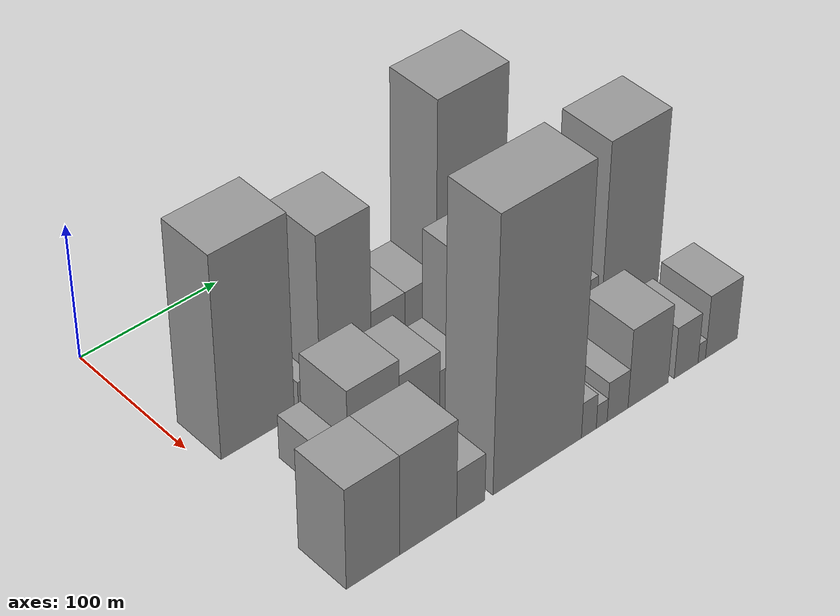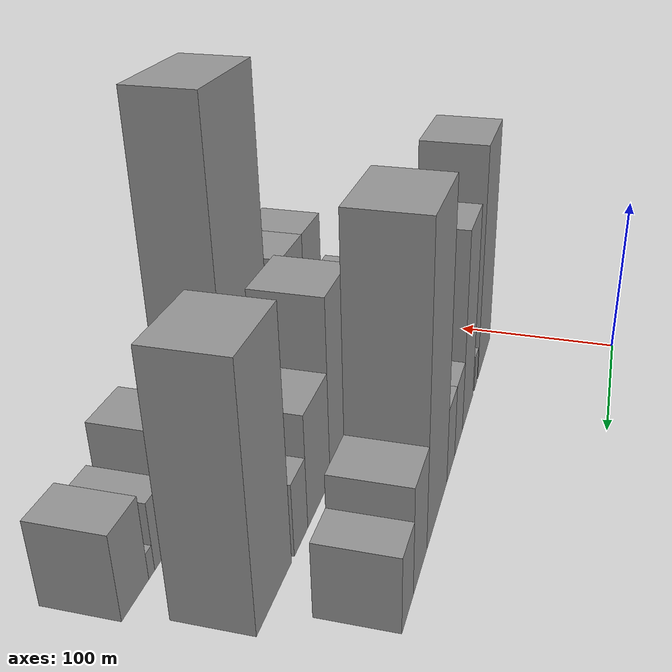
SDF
<sdf version="1.6">
 <world name="default">
  <model name="building_17">
   <static>1</static>
   <pose>100.0000 36.2147 0 0.000000 0.000000 0.000000</pose>
   <link name="link">
    <pose>0 0 75.00 0 0 0</pose>
    <collision name="collision"><geometry><box><size>40.0000 52.8672 150.0000</size></box></geometry></collision>
    <visual name="visual">
     <cast_shadows>0</cast_shadows>
     <geometry><box><size>40.0000 52.8672 150.0000</size></box></geometry>
     <material>
      <script>
       <uri>model://grey_wall/materials/scripts</uri>
       <uri>model://grey_wall/materials/textures</uri>
       <name>vrc/grey_wall</name>
      </script>
     </material>
    </visual>
   </link>
  </model>
  <model name="building_18">
   <static>1</static>
   <pose>100.0000 71.1362 0 0.000000 0.000000 0.000000</pose>
   <link name="link">
    <pose>0 0 12.00 0 0 0</pose>
    <collision name="collision"><geometry><box><size>40.0000 10.9758 24.0000</size></box></geometry></collision>
    <visual name="visual">
     <cast_shadows>0</cast_shadows>
     <geometry><box><size>40.0000 10.9758 24.0000</size></box></geometry>
     <material>
      <script>
       <uri>model://grey_wall/materials/scripts</uri>
       <uri>model://grey_wall/materials/textures</uri>
       <name>vrc/grey_wall</name>
      </script>
     </material>
    </visual>
   </link>
  </model>
  <model name="building_19">
   <static>1</static>
   <pose>100.0000 100.8529 0 0.000000 0.000000 0.000000</pose>
   <link name="link">
    <pose>0 0 61.50 0 0 0</pose>
    <collision name="collision"><geometry><box><size>40.0000 38.4576 123.0000</size></box></geometry></collision>
    <visual name="visual">
     <cast_shadows>0</cast_shadows>
     <geometry><box><size>40.0000 38.4576 123.0000</size></box></geometry>
     <material>
      <script>
       <uri>model://grey_wall/materials/scripts</uri>
       <uri>model://grey_wall/materials/textures</uri>
       <name>vrc/grey_wall</name>
      </script>
     </material>
    </visual>
   </link>
  </model>
  <model name="building_20">
   <static>1</static>
   <pose>100.0000 132.8701 0 0.000000 0.000000 0.000000</pose>
   <link name="link">
    <pose>0 0 22.50 0 0 0</pose>
    <collision name="collision"><geometry><box><size>40.0000 25.5769 45.0000</size></box></geometry></collision>
    <visual name="visual">
     <cast_shadows>0</cast_shadows>
     <geometry><box><size>40.0000 25.5769 45.0000</size></box></geometry>
     <material>
      <script>
       <uri>model://grey_wall/materials/scripts</uri>
       <uri>model://grey_wall/materials/textures</uri>
       <name>vrc/grey_wall</name>
      </script>
     </material>
    </visual>
   </link>
  </model>
  <model name="building_21">
   <static>1</static>
   <pose>100.0000 157.6431 0 0.000000 0.000000 0.000000</pose>
   <link name="link">
    <pose>0 0 22.50 0 0 0</pose>
    <collision name="collision"><geometry><box><size>40.0000 23.9690 45.0000</size></box></geometry></collision>
    <visual name="visual">
     <cast_shadows>0</cast_shadows>
     <geometry><box><size>40.0000 23.9690 45.0000</size></box></geometry>
     <material>
      <script>
       <uri>model://grey_wall/materials/scripts</uri>
       <uri>model://grey_wall/materials/textures</uri>
       <name>vrc/grey_wall</name>
      </script>
     </material>
    </visual>
   </link>
  </model>
  <model name="building_22">
   <static>1</static>
   <pose>100.0000 196.2056 0 0.000000 0.000000 0.000000</pose>
   <link name="link">
    <pose>0 0 85.50 0 0 0</pose>
    <collision name="collision"><geometry><box><size>40.0000 53.1561 171.0000</size></box></geometry></collision>
    <visual name="visual">
     <cast_shadows>0</cast_shadows>
     <geometry><box><size>40.0000 53.1561 171.0000</size></box></geometry>
     <material>
      <script>
       <uri>model://grey_wall/materials/scripts</uri>
       <uri>model://grey_wall/materials/textures</uri>
       <name>vrc/grey_wall</name>
      </script>
     </material>
    </visual>
   </link>
  </model>
  <model name="building_23">
   <static>1</static>
   <pose>100.0000 238.1051 0 0.000000 0.000000 0.000000</pose>
   <link name="link">
    <pose>0 0 30.00 0 0 0</pose>
    <collision name="collision"><geometry><box><size>40.0000 30.6430 60.0000</size></box></geometry></collision>
    <visual name="visual">
     <cast_shadows>0</cast_shadows>
     <geometry><box><size>40.0000 30.6430 60.0000</size></box></geometry>
     <material>
      <script>
       <uri>model://grey_wall/materials/scripts</uri>
       <uri>model://grey_wall/materials/textures</uri>
       <name>vrc/grey_wall</name>
      </script>
     </material>
    </visual>
   </link>
  </model>
  <model name="building_24">
   <static>1</static>
   <pose>100.0000 265.1412 0 0.000000 0.000000 0.000000</pose>
   <link name="link">
    <pose>0 0 21.00 0 0 0</pose>
    <collision name="collision"><geometry><box><size>40.0000 23.4290 42.0000</size></box></geometry></collision>
    <visual name="visual">
     <cast_shadows>0</cast_shadows>
     <geometry><box><size>40.0000 23.4290 42.0000</size></box></geometry>
     <material>
      <script>
       <uri>model://grey_wall/materials/scripts</uri>
       <uri>model://grey_wall/materials/textures</uri>
       <name>vrc/grey_wall</name>
      </script>
     </material>
    </visual>
   </link>
  </model>
  <model name="building_56">
   <static>1</static>
   <pose>160.0000 43.5094 0 0.000000 0.000000 0.000000</pose>
   <link name="link">
    <pose>0 0 16.50 0 0 0</pose>
    <collision name="collision"><geometry><box><size>40.0000 16.6226 33.0000</size></box></geometry></collision>
    <visual name="visual">
     <cast_shadows>0</cast_shadows>
     <geometry><box><size>40.0000 16.6226 33.0000</size></box></geometry>
     <material>
      <script>
       <uri>model://grey_wall/materials/scripts</uri>
       <uri>model://grey_wall/materials/textures</uri>
       <name>vrc/grey_wall</name>
      </script>
     </material>
    </visual>
   </link>
  </model>
  <model name="building_57">
   <static>1</static>
   <pose>160.0000 70.5912 0 0.000000 0.000000 0.000000</pose>
   <link name="link">
    <pose>0 0 34.50 0 0 0</pose>
    <collision name="collision"><geometry><box><size>40.0000 37.5410 69.0000</size></box></geometry></collision>
    <visual name="visual">
     <cast_shadows>0</cast_shadows>
     <geometry><box><size>40.0000 37.5410 69.0000</size></box></geometry>
     <material>
      <script>
       <uri>model://grey_wall/materials/scripts</uri>
       <uri>model://grey_wall/materials/textures</uri>
       <name>vrc/grey_wall</name>
      </script>
     </material>
    </visual>
   </link>
  </model>
  <model name="building_58">
   <static>1</static>
   <pose>160.0000 104.3225 0 0.000000 0.000000 0.000000</pose>
   <link name="link">
    <pose>0 0 28.50 0 0 0</pose>
    <collision name="collision"><geometry><box><size>40.0000 29.9216 57.0000</size></box></geometry></collision>
    <visual name="visual">
     <cast_shadows>0</cast_shadows>
     <geometry><box><size>40.0000 29.9216 57.0000</size></box></geometry>
     <material>
      <script>
       <uri>model://grey_wall/materials/scripts</uri>
       <uri>model://grey_wall/materials/textures</uri>
       <name>vrc/grey_wall</name>
      </script>
     </material>
    </visual>
   </link>
  </model>
  <model name="building_59">
   <static>1</static>
   <pose>160.0000 130.3247 0 0.000000 0.000000 0.000000</pose>
   <link name="link">
    <pose>0 0 21.00 0 0 0</pose>
    <collision name="collision"><geometry><box><size>40.0000 22.0829 42.0000</size></box></geometry></collision>
    <visual name="visual">
     <cast_shadows>0</cast_shadows>
     <geometry><box><size>40.0000 22.0829 42.0000</size></box></geometry>
     <material>
      <script>
       <uri>model://grey_wall/materials/scripts</uri>
       <uri>model://grey_wall/materials/textures</uri>
       <name>vrc/grey_wall</name>
      </script>
     </material>
    </visual>
   </link>
  </model>
  <model name="building_60">
   <static>1</static>
   <pose>160.0000 161.8970 0 0.000000 0.000000 0.000000</pose>
   <link name="link">
    <pose>0 0 54.00 0 0 0</pose>
    <collision name="collision"><geometry><box><size>40.0000 41.0616 108.0000</size></box></geometry></collision>
    <visual name="visual">
     <cast_shadows>0</cast_shadows>
     <geometry><box><size>40.0000 41.0616 108.0000</size></box></geometry>
     <material>
      <script>
       <uri>model://grey_wall/materials/scripts</uri>
       <uri>model://grey_wall/materials/textures</uri>
       <name>vrc/grey_wall</name>
      </script>
     </material>
    </visual>
   </link>
  </model>
  <model name="building_61">
   <static>1</static>
   <pose>160.0000 201.6902 0 0.000000 0.000000 0.000000</pose>
   <link name="link">
    <pose>0 0 33.00 0 0 0</pose>
    <collision name="collision"><geometry><box><size>40.0000 38.5248 66.0000</size></box></geometry></collision>
    <visual name="visual">
     <cast_shadows>0</cast_shadows>
     <geometry><box><size>40.0000 38.5248 66.0000</size></box></geometry>
     <material>
      <script>
       <uri>model://grey_wall/materials/scripts</uri>
       <uri>model://grey_wall/materials/textures</uri>
       <name>vrc/grey_wall</name>
      </script>
     </material>
    </visual>
   </link>
  </model>
  <model name="building_62">
   <static>1</static>
   <pose>160.0000 231.4833 0 0.000000 0.000000 0.000000</pose>
   <link name="link">
    <pose>0 0 21.00 0 0 0</pose>
    <collision name="collision"><geometry><box><size>40.0000 21.0615 42.0000</size></box></geometry></collision>
    <visual name="visual">
     <cast_shadows>0</cast_shadows>
     <geometry><box><size>40.0000 21.0615 42.0000</size></box></geometry>
     <material>
      <script>
       <uri>model://grey_wall/materials/scripts</uri>
       <uri>model://grey_wall/materials/textures</uri>
       <name>vrc/grey_wall</name>
      </script>
     </material>
    </visual>
   </link>
  </model>
  <model name="building_63">
   <static>1</static>
   <pose>160.0000 269.6209 0 0.000000 0.000000 0.000000</pose>
   <link name="link">
    <pose>0 0 69.00 0 0 0</pose>
    <collision name="collision"><geometry><box><size>40.0000 47.2138 138.0000</size></box></geometry></collision>
    <visual name="visual">
     <cast_shadows>0</cast_shadows>
     <geometry><box><size>40.0000 47.2138 138.0000</size></box></geometry>
     <material>
      <script>
       <uri>model://grey_wall/materials/scripts</uri>
       <uri>model://grey_wall/materials/textures</uri>
       <name>vrc/grey_wall</name>
      </script>
     </material>
    </visual>
   </link>
  </model>
  <model name="building_90">
   <static>1</static>
   <pose>220.0000 18.6313 0 0.000000 0.000000 0.000000</pose>
   <link name="link">
    <pose>0 0 37.50 0 0 0</pose>
    <collision name="collision"><geometry><box><size>40.0000 37.6420 75.0000</size></box></geometry></collision>
    <visual name="visual">
     <cast_shadows>0</cast_shadows>
     <geometry><box><size>40.0000 37.6420 75.0000</size></box></geometry>
     <material>
      <script>
       <uri>model://grey_wall/materials/scripts</uri>
       <uri>model://grey_wall/materials/textures</uri>
       <name>vrc/grey_wall</name>
      </script>
     </material>
    </visual>
   </link>
  </model>
  <model name="building_91">
   <static>1</static>
   <pose>220.0000 57.8732 0 0.000000 0.000000 0.000000</pose>
   <link name="link">
    <pose>0 0 37.50 0 0 0</pose>
    <collision name="collision"><geometry><box><size>40.0000 40.8420 75.0000</size></box></geometry></collision>
    <visual name="visual">
     <cast_shadows>0</cast_shadows>
     <geometry><box><size>40.0000 40.8420 75.0000</size></box></geometry>
     <material>
      <script>
       <uri>model://grey_wall/materials/scripts</uri>
       <uri>model://grey_wall/materials/textures</uri>
       <name>vrc/grey_wall</name>
      </script>
     </material>
    </visual>
   </link>
  </model>
  <model name="building_92">
   <static>1</static>
   <pose>220.0000 88.7363 0 0.000000 0.000000 0.000000</pose>
   <link name="link">
    <pose>0 0 18.00 0 0 0</pose>
    <collision name="collision"><geometry><box><size>40.0000 20.8841 36.0000</size></box></geometry></collision>
    <visual name="visual">
     <cast_shadows>0</cast_shadows>
     <geometry><box><size>40.0000 20.8841 36.0000</size></box></geometry>
     <material>
      <script>
       <uri>model://grey_wall/materials/scripts</uri>
       <uri>model://grey_wall/materials/textures</uri>
       <name>vrc/grey_wall</name>
      </script>
     </material>
    </visual>
   </link>
  </model>
  <model name="building_93">
   <static>1</static>
   <pose>220.0000 138.8895 0 0.000000 0.000000 0.000000</pose>
   <link name="link">
    <pose>0 0 100.50 0 0 0</pose>
    <collision name="collision"><geometry><box><size>40.0000 67.4222 201.0000</size></box></geometry></collision>
    <visual name="visual">
     <cast_shadows>0</cast_shadows>
     <geometry><box><size>40.0000 67.4222 201.0000</size></box></geometry>
     <material>
      <script>
       <uri>model://grey_wall/materials/scripts</uri>
       <uri>model://grey_wall/materials/textures</uri>
       <name>vrc/grey_wall</name>
      </script>
     </material>
    </visual>
   </link>
  </model>
  <model name="building_94">
   <static>1</static>
   <pose>220.0000 178.4116 0 0.000000 0.000000 0.000000</pose>
   <link name="link">
    <pose>0 0 13.50 0 0 0</pose>
    <collision name="collision"><geometry><box><size>40.0000 11.6221 27.0000</size></box></geometry></collision>
    <visual name="visual">
     <cast_shadows>0</cast_shadows>
     <geometry><box><size>40.0000 11.6221 27.0000</size></box></geometry>
     <material>
      <script>
       <uri>model://grey_wall/materials/scripts</uri>
       <uri>model://grey_wall/materials/textures</uri>
       <name>vrc/grey_wall</name>
      </script>
     </material>
    </visual>
   </link>
  </model>
  <model name="building_95">
   <static>1</static>
   <pose>220.0000 188.5057 0 0.000000 0.000000 0.000000</pose>
   <link name="link">
    <pose>0 0 9.00 0 0 0</pose>
    <collision name="collision"><geometry><box><size>40.0000 8.5661 18.0000</size></box></geometry></collision>
    <visual name="visual">
     <cast_shadows>0</cast_shadows>
     <geometry><box><size>40.0000 8.5661 18.0000</size></box></geometry>
     <material>
      <script>
       <uri>model://grey_wall/materials/scripts</uri>
       <uri>model://grey_wall/materials/textures</uri>
       <name>vrc/grey_wall</name>
      </script>
     </material>
    </visual>
   </link>
  </model>
  <model name="building_96">
   <static>1</static>
   <pose>220.0000 201.0947 0 0.000000 0.000000 0.000000</pose>
   <link name="link">
    <pose>0 0 15.00 0 0 0</pose>
    <collision name="collision"><geometry><box><size>40.0000 16.6120 30.0000</size></box></geometry></collision>
    <visual name="visual">
     <cast_shadows>0</cast_shadows>
     <geometry><box><size>40.0000 16.6120 30.0000</size></box></geometry>
     <material>
      <script>
       <uri>model://grey_wall/materials/scripts</uri>
       <uri>model://grey_wall/materials/textures</uri>
       <name>vrc/grey_wall</name>
      </script>
     </material>
    </visual>
   </link>
  </model>
  <model name="building_97">
   <static>1</static>
   <pose>220.0000 225.5887 0 0.000000 0.000000 0.000000</pose>
   <link name="link">
    <pose>0 0 30.00 0 0 0</pose>
    <collision name="collision"><geometry><box><size>40.0000 32.3761 60.0000</size></box></geometry></collision>
    <visual name="visual">
     <cast_shadows>0</cast_shadows>
     <geometry><box><size>40.0000 32.3761 60.0000</size></box></geometry>
     <material>
      <script>
       <uri>model://grey_wall/materials/scripts</uri>
       <uri>model://grey_wall/materials/textures</uri>
       <name>vrc/grey_wall</name>
      </script>
     </material>
    </visual>
   </link>
  </model>
  <model name="building_98">
   <static>1</static>
   <pose>220.0000 256.5649 0 0.000000 0.000000 0.000000</pose>
   <link name="link">
    <pose>0 0 19.50 0 0 0</pose>
    <collision name="collision"><geometry><box><size>40.0000 19.5763 39.0000</size></box></geometry></collision>
    <visual name="visual">
     <cast_shadows>0</cast_shadows>
     <geometry><box><size>40.0000 19.5763 39.0000</size></box></geometry>
     <material>
      <script>
       <uri>model://grey_wall/materials/scripts</uri>
       <uri>model://grey_wall/materials/textures</uri>
       <name>vrc/grey_wall</name>
      </script>
     </material>
    </visual>
   </link>
  </model>
  <model name="building_99">
   <static>1</static>
   <pose>220.0000 269.4393 0 0.000000 0.000000 0.000000</pose>
   <link name="link">
    <pose>0 0 7.50 0 0 0</pose>
    <collision name="collision"><geometry><box><size>40.0000 6.1726 15.0000</size></box></geometry></collision>
    <visual name="visual">
     <cast_shadows>0</cast_shadows>
     <geometry><box><size>40.0000 6.1726 15.0000</size></box></geometry>
     <material>
      <script>
       <uri>model://grey_wall/materials/scripts</uri>
       <uri>model://grey_wall/materials/textures</uri>
       <name>vrc/grey_wall</name>
      </script>
     </material>
    </visual>
   </link>
  </model>
  <model name="building_100">
   <static>1</static>
   <pose>220.0000 285.8251 0 0.000000 0.000000 0.000000</pose>
   <link name="link">
    <pose>0 0 24.00 0 0 0</pose>
    <collision name="collision"><geometry><box><size>40.0000 26.5989 48.0000</size></box></geometry></collision>
    <visual name="visual">
     <cast_shadows>0</cast_shadows>
     <geometry><box><size>40.0000 26.5989 48.0000</size></box></geometry>
     <material>
      <script>
       <uri>model://grey_wall/materials/scripts</uri>
       <uri>model://grey_wall/materials/textures</uri>
       <name>vrc/grey_wall</name>
      </script>
     </material>
    </visual>
   </link>
  </model>
 </world>
</sdf>
